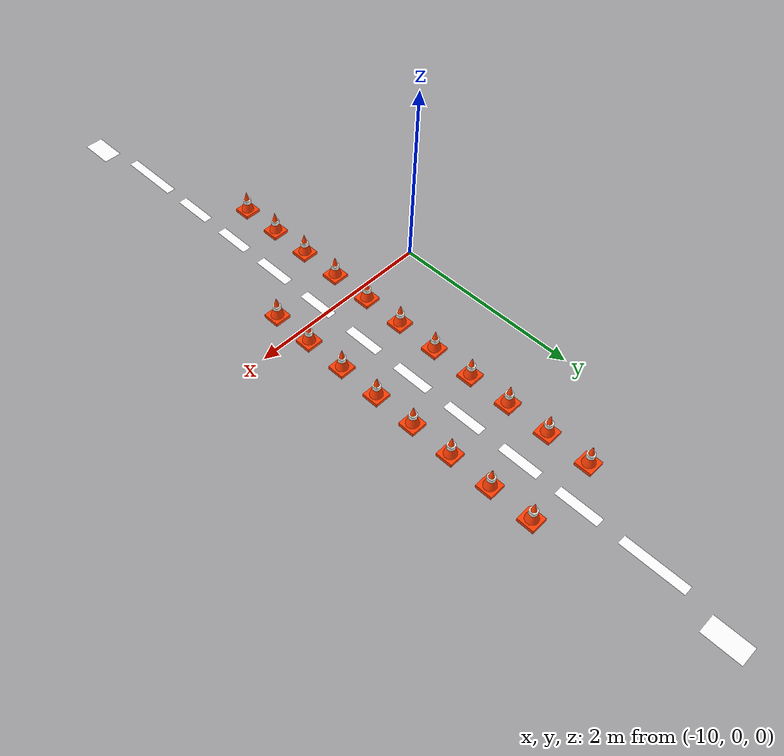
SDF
<sdf version="1.7">
 <world name="kookmin_xycar_track">
  <model name="yellow_centerline_dash_025">
   <static>true</static>
   <pose>-8.6900 4.5500 0.0192 0 0 0</pose>
   <link name="yellow_centerline_dash_025_surface">
    <visual name="visual">
     <cast_shadows>false</cast_shadows>
     <geometry><plane><normal>0 0 1</normal><size>0.2000 0.3800</size></plane></geometry>
     <material>
      <ambient>1 1 1 1</ambient>
      <diffuse>1 1 1 1</diffuse>
      <emissive>1.0000 0.7686 0.0471 1</emissive>
      <pbr>
       <metal>
        <albedo_map>file://media/materials/textures/kookmin_yellow_centerline_cad_v4_dash_025.png</albedo_map>
        <roughness>1</roughness>
        <metalness>0</metalness>
       </metal>
      </pbr>
     </material>
    </visual>
   </link>
  </model>
  <model name="yellow_centerline_dash_027">
   <static>true</static>
   <pose>-8.8200 3.8000 0.0193 0 0 0</pose>
   <link name="yellow_centerline_dash_027_surface">
    <visual name="visual">
     <cast_shadows>false</cast_shadows>
     <geometry><plane><normal>0 0 1</normal><size>0.1000 0.6400</size></plane></geometry>
     <material>
      <ambient>1 1 1 1</ambient>
      <diffuse>1 1 1 1</diffuse>
      <emissive>1.0000 0.7686 0.0471 1</emissive>
      <pbr>
       <metal>
        <albedo_map>file://media/materials/textures/kookmin_yellow_centerline_cad_v4_dash_027.png</albedo_map>
        <roughness>1</roughness>
        <metalness>0</metalness>
       </metal>
      </pbr>
     </material>
    </visual>
   </link>
  </model>
  <model name="yellow_centerline_dash_028">
   <static>true</static>
   <pose>-8.8200 3.0500 0.0193 0 0 0</pose>
   <link name="yellow_centerline_dash_028_surface">
    <visual name="visual">
     <cast_shadows>false</cast_shadows>
     <geometry><plane><normal>0 0 1</normal><size>0.1000 0.4400</size></plane></geometry>
     <material>
      <ambient>1 1 1 1</ambient>
      <diffuse>1 1 1 1</diffuse>
      <emissive>1.0000 0.7686 0.0471 1</emissive>
      <pbr>
       <metal>
        <albedo_map>file://media/materials/textures/kookmin_yellow_centerline_cad_v4_dash_028.png</albedo_map>
        <roughness>1</roughness>
        <metalness>0</metalness>
       </metal>
      </pbr>
     </material>
    </visual>
   </link>
  </model>
  <model name="yellow_centerline_dash_030">
   <static>true</static>
   <pose>-8.8200 2.4200 0.0194 0 0 0</pose>
   <link name="yellow_centerline_dash_030_surface">
    <visual name="visual">
     <cast_shadows>false</cast_shadows>
     <geometry><plane><normal>0 0 1</normal><size>0.1000 0.4200</size></plane></geometry>
     <material>
      <ambient>1 1 1 1</ambient>
      <diffuse>1 1 1 1</diffuse>
      <emissive>1.0000 0.7686 0.0471 1</emissive>
      <pbr>
       <metal>
        <albedo_map>file://media/materials/textures/kookmin_yellow_centerline_cad_v4_dash_030.png</albedo_map>
        <roughness>1</roughness>
        <metalness>0</metalness>
       </metal>
      </pbr>
     </material>
    </visual>
   </link>
  </model>
  <model name="yellow_centerline_dash_032">
   <static>true</static>
   <pose>-8.8200 1.7800 0.0195 0 0 0</pose>
   <link name="yellow_centerline_dash_032_surface">
    <visual name="visual">
     <cast_shadows>false</cast_shadows>
     <geometry><plane><normal>0 0 1</normal><size>0.1000 0.4200</size></plane></geometry>
     <material>
      <ambient>1 1 1 1</ambient>
      <diffuse>1 1 1 1</diffuse>
      <emissive>1.0000 0.7686 0.0471 1</emissive>
      <pbr>
       <metal>
        <albedo_map>file://media/materials/textures/kookmin_yellow_centerline_cad_v4_dash_032.png</albedo_map>
        <roughness>1</roughness>
        <metalness>0</metalness>
       </metal>
      </pbr>
     </material>
    </visual>
   </link>
  </model>
  <model name="yellow_centerline_dash_033">
   <static>true</static>
   <pose>-8.8200 1.1450 0.0196 0 0 0</pose>
   <link name="yellow_centerline_dash_033_surface">
    <visual name="visual">
     <cast_shadows>false</cast_shadows>
     <geometry><plane><normal>0 0 1</normal><size>0.1000 0.4100</size></plane></geometry>
     <material>
      <ambient>1 1 1 1</ambient>
      <diffuse>1 1 1 1</diffuse>
      <emissive>1.0000 0.7686 0.0471 1</emissive>
      <pbr>
       <metal>
        <albedo_map>file://media/materials/textures/kookmin_yellow_centerline_cad_v4_dash_033.png</albedo_map>
        <roughness>1</roughness>
        <metalness>0</metalness>
       </metal>
      </pbr>
     </material>
    </visual>
   </link>
  </model>
  <model name="yellow_centerline_dash_035">
   <static>true</static>
   <pose>-8.8200 0.5100 0.0197 0 0 0</pose>
   <link name="yellow_centerline_dash_035_surface">
    <visual name="visual">
     <cast_shadows>false</cast_shadows>
     <geometry><plane><normal>0 0 1</normal><size>0.1000 0.4000</size></plane></geometry>
     <material>
      <ambient>1 1 1 1</ambient>
      <diffuse>1 1 1 1</diffuse>
      <emissive>1.0000 0.7686 0.0471 1</emissive>
      <pbr>
       <metal>
        <albedo_map>file://media/materials/textures/kookmin_yellow_centerline_cad_v4_dash_035.png</albedo_map>
        <roughness>1</roughness>
        <metalness>0</metalness>
       </metal>
      </pbr>
     </material>
    </visual>
   </link>
  </model>
  <model name="yellow_centerline_dash_037">
   <static>true</static>
   <pose>-8.8200 -0.1300 0.0198 0 0 0</pose>
   <link name="yellow_centerline_dash_037_surface">
    <visual name="visual">
     <cast_shadows>false</cast_shadows>
     <geometry><plane><normal>0 0 1</normal><size>0.1000 0.4000</size></plane></geometry>
     <material>
      <ambient>1 1 1 1</ambient>
      <diffuse>1 1 1 1</diffuse>
      <emissive>1.0000 0.7686 0.0471 1</emissive>
      <pbr>
       <metal>
        <albedo_map>file://media/materials/textures/kookmin_yellow_centerline_cad_v4_dash_037.png</albedo_map>
        <roughness>1</roughness>
        <metalness>0</metalness>
       </metal>
      </pbr>
     </material>
    </visual>
   </link>
  </model>
  <model name="yellow_centerline_dash_038">
   <static>true</static>
   <pose>-8.8200 -0.7750 0.0198 0 0 0</pose>
   <link name="yellow_centerline_dash_038_surface">
    <visual name="visual">
     <cast_shadows>false</cast_shadows>
     <geometry><plane><normal>0 0 1</normal><size>0.1000 0.4300</size></plane></geometry>
     <material>
      <ambient>1 1 1 1</ambient>
      <diffuse>1 1 1 1</diffuse>
      <emissive>1.0000 0.7686 0.0471 1</emissive>
      <pbr>
       <metal>
        <albedo_map>file://media/materials/textures/kookmin_yellow_centerline_cad_v4_dash_038.png</albedo_map>
        <roughness>1</roughness>
        <metalness>0</metalness>
       </metal>
      </pbr>
     </material>
    </visual>
   </link>
  </model>
  <model name="yellow_centerline_dash_040">
   <static>true</static>
   <pose>-8.8200 -1.4050 0.0199 0 0 0</pose>
   <link name="yellow_centerline_dash_040_surface">
    <visual name="visual">
     <cast_shadows>false</cast_shadows>
     <geometry><plane><normal>0 0 1</normal><size>0.1000 0.4100</size></plane></geometry>
     <material>
      <ambient>1 1 1 1</ambient>
      <diffuse>1 1 1 1</diffuse>
      <emissive>1.0000 0.7686 0.0471 1</emissive>
      <pbr>
       <metal>
        <albedo_map>file://media/materials/textures/kookmin_yellow_centerline_cad_v4_dash_040.png</albedo_map>
        <roughness>1</roughness>
        <metalness>0</metalness>
       </metal>
      </pbr>
     </material>
    </visual>
   </link>
  </model>
  <model name="yellow_centerline_dash_042">
   <static>true</static>
   <pose>-8.8200 -2.0500 0.0200 0 0 0</pose>
   <link name="yellow_centerline_dash_042_surface">
    <visual name="visual">
     <cast_shadows>false</cast_shadows>
     <geometry><plane><normal>0 0 1</normal><size>0.1000 0.4400</size></plane></geometry>
     <material>
      <ambient>1 1 1 1</ambient>
      <diffuse>1 1 1 1</diffuse>
      <emissive>1.0000 0.7686 0.0471 1</emissive>
      <pbr>
       <metal>
        <albedo_map>file://media/materials/textures/kookmin_yellow_centerline_cad_v4_dash_042.png</albedo_map>
        <roughness>1</roughness>
        <metalness>0</metalness>
       </metal>
      </pbr>
     </material>
    </visual>
   </link>
  </model>
  <model name="yellow_centerline_dash_043">
   <static>true</static>
   <pose>-8.8200 -2.8100 0.0201 0 0 0</pose>
   <link name="yellow_centerline_dash_043_surface">
    <visual name="visual">
     <cast_shadows>false</cast_shadows>
     <geometry><plane><normal>0 0 1</normal><size>0.1000 0.6800</size></plane></geometry>
     <material>
      <ambient>1 1 1 1</ambient>
      <diffuse>1 1 1 1</diffuse>
      <emissive>1.0000 0.7686 0.0471 1</emissive>
      <pbr>
       <metal>
        <albedo_map>file://media/materials/textures/kookmin_yellow_centerline_cad_v4_dash_043.png</albedo_map>
        <roughness>1</roughness>
        <metalness>0</metalness>
       </metal>
      </pbr>
     </material>
    </visual>
   </link>
  </model>
  <model name="yellow_centerline_dash_045">
   <static>true</static>
   <pose>-8.7000 -3.5650 0.0202 0 0 0</pose>
   <link name="yellow_centerline_dash_045_surface">
    <visual name="visual">
     <cast_shadows>false</cast_shadows>
     <geometry><plane><normal>0 0 1</normal><size>0.2000 0.3700</size></plane></geometry>
     <material>
      <ambient>1 1 1 1</ambient>
      <diffuse>1 1 1 1</diffuse>
      <emissive>1.0000 0.7686 0.0471 1</emissive>
      <pbr>
       <metal>
        <albedo_map>file://media/materials/textures/kookmin_yellow_centerline_cad_v4_dash_045.png</albedo_map>
        <roughness>1</roughness>
        <metalness>0</metalness>
       </metal>
      </pbr>
     </material>
    </visual>
   </link>
  </model>
  <model name="mission_cone_east_01">
   <static>true</static>
   <pose>-8.4400 2.8500 0 0 0 0</pose>
   <link name="cone">
    <collision name="collision">
     <pose>0 0 0.1350 0 0 0</pose>
     <geometry><cylinder><radius>0.0615</radius><length>0.2700</length></cylinder></geometry>
    </collision>
    <visual name="base">
     <pose>0 0 0.018 0 0 0</pose>
     <geometry><box><size>0.1762 0.1762 0.036</size></box></geometry>
     <material>
      <ambient>1.0000 0.2400 0.0150 1.0000</ambient>
      <diffuse>1.0000 0.2400 0.0150 1.0000</diffuse>
      <emissive>0.1800 0.0250 0.0000 1.0000</emissive>
      <pbr><metal><roughness>0.72</roughness><metalness>0.0</metalness></metal></pbr>
     </material>
    </visual>
    <visual name="body">
     <pose>0 0 0.1350 0 0 0</pose>
     <geometry><cone><radius>0.0750</radius><length>0.2700</length></cone></geometry>
     <material>
      <ambient>1.0000 0.2400 0.0150 1.0000</ambient>
      <diffuse>1.0000 0.2400 0.0150 1.0000</diffuse>
      <emissive>0.1800 0.0250 0.0000 1.0000</emissive>
      <pbr><metal><roughness>0.72</roughness><metalness>0.0</metalness></metal></pbr>
     </material>
    </visual>
    <visual name="reflective_band">
     <pose>0 0 0.1485 0 0 0</pose>
     <geometry><cylinder><radius>0.0405</radius><length>0.0432</length></cylinder></geometry>
     <material>
      <ambient>0.9500 0.9500 0.9000 1.0000</ambient>
      <diffuse>0.9500 0.9500 0.9000 1.0000</diffuse>
      <emissive>0.1200 0.1200 0.1000 1.0000</emissive>
      <pbr><metal><roughness>0.72</roughness><metalness>0.0</metalness></metal></pbr>
     </material>
    </visual>
   </link>
  </model>
  <model name="mission_cone_west_01">
   <static>true</static>
   <pose>-9.2200 2.8500 0 0 0 0</pose>
   <link name="cone">
    <collision name="collision">
     <pose>0 0 0.1350 0 0 0</pose>
     <geometry><cylinder><radius>0.0615</radius><length>0.2700</length></cylinder></geometry>
    </collision>
    <visual name="base">
     <pose>0 0 0.018 0 0 0</pose>
     <geometry><box><size>0.1762 0.1762 0.036</size></box></geometry>
     <material>
      <ambient>1.0000 0.2400 0.0150 1.0000</ambient>
      <diffuse>1.0000 0.2400 0.0150 1.0000</diffuse>
      <emissive>0.1800 0.0250 0.0000 1.0000</emissive>
      <pbr><metal><roughness>0.72</roughness><metalness>0.0</metalness></metal></pbr>
     </material>
    </visual>
    <visual name="body">
     <pose>0 0 0.1350 0 0 0</pose>
     <geometry><cone><radius>0.0750</radius><length>0.2700</length></cone></geometry>
     <material>
      <ambient>1.0000 0.2400 0.0150 1.0000</ambient>
      <diffuse>1.0000 0.2400 0.0150 1.0000</diffuse>
      <emissive>0.1800 0.0250 0.0000 1.0000</emissive>
      <pbr><metal><roughness>0.72</roughness><metalness>0.0</metalness></metal></pbr>
     </material>
    </visual>
    <visual name="reflective_band">
     <pose>0 0 0.1485 0 0 0</pose>
     <geometry><cylinder><radius>0.0405</radius><length>0.0432</length></cylinder></geometry>
     <material>
      <ambient>0.9500 0.9500 0.9000 1.0000</ambient>
      <diffuse>0.9500 0.9500 0.9000 1.0000</diffuse>
      <emissive>0.1200 0.1200 0.1000 1.0000</emissive>
      <pbr><metal><roughness>0.72</roughness><metalness>0.0</metalness></metal></pbr>
     </material>
    </visual>
   </link>
  </model>
  <model name="mission_cone_east_02">
   <static>true</static>
   <pose>-8.4400 2.4000 0 0 0 0</pose>
   <link name="cone">
    <collision name="collision">
     <pose>0 0 0.1350 0 0 0</pose>
     <geometry><cylinder><radius>0.0615</radius><length>0.2700</length></cylinder></geometry>
    </collision>
    <visual name="base">
     <pose>0 0 0.018 0 0 0</pose>
     <geometry><box><size>0.1762 0.1762 0.036</size></box></geometry>
     <material>
      <ambient>1.0000 0.2400 0.0150 1.0000</ambient>
      <diffuse>1.0000 0.2400 0.0150 1.0000</diffuse>
      <emissive>0.1800 0.0250 0.0000 1.0000</emissive>
      <pbr><metal><roughness>0.72</roughness><metalness>0.0</metalness></metal></pbr>
     </material>
    </visual>
    <visual name="body">
     <pose>0 0 0.1350 0 0 0</pose>
     <geometry><cone><radius>0.0750</radius><length>0.2700</length></cone></geometry>
     <material>
      <ambient>1.0000 0.2400 0.0150 1.0000</ambient>
      <diffuse>1.0000 0.2400 0.0150 1.0000</diffuse>
      <emissive>0.1800 0.0250 0.0000 1.0000</emissive>
      <pbr><metal><roughness>0.72</roughness><metalness>0.0</metalness></metal></pbr>
     </material>
    </visual>
    <visual name="reflective_band">
     <pose>0 0 0.1485 0 0 0</pose>
     <geometry><cylinder><radius>0.0405</radius><length>0.0432</length></cylinder></geometry>
     <material>
      <ambient>0.9500 0.9500 0.9000 1.0000</ambient>
      <diffuse>0.9500 0.9500 0.9000 1.0000</diffuse>
      <emissive>0.1200 0.1200 0.1000 1.0000</emissive>
      <pbr><metal><roughness>0.72</roughness><metalness>0.0</metalness></metal></pbr>
     </material>
    </visual>
   </link>
  </model>
  <model name="mission_cone_west_02">
   <static>true</static>
   <pose>-9.2200 2.4000 0 0 0 0</pose>
   <link name="cone">
    <collision name="collision">
     <pose>0 0 0.1350 0 0 0</pose>
     <geometry><cylinder><radius>0.0615</radius><length>0.2700</length></cylinder></geometry>
    </collision>
    <visual name="base">
     <pose>0 0 0.018 0 0 0</pose>
     <geometry><box><size>0.1762 0.1762 0.036</size></box></geometry>
     <material>
      <ambient>1.0000 0.2400 0.0150 1.0000</ambient>
      <diffuse>1.0000 0.2400 0.0150 1.0000</diffuse>
      <emissive>0.1800 0.0250 0.0000 1.0000</emissive>
      <pbr><metal><roughness>0.72</roughness><metalness>0.0</metalness></metal></pbr>
     </material>
    </visual>
    <visual name="body">
     <pose>0 0 0.1350 0 0 0</pose>
     <geometry><cone><radius>0.0750</radius><length>0.2700</length></cone></geometry>
     <material>
      <ambient>1.0000 0.2400 0.0150 1.0000</ambient>
      <diffuse>1.0000 0.2400 0.0150 1.0000</diffuse>
      <emissive>0.1800 0.0250 0.0000 1.0000</emissive>
      <pbr><metal><roughness>0.72</roughness><metalness>0.0</metalness></metal></pbr>
     </material>
    </visual>
    <visual name="reflective_band">
     <pose>0 0 0.1485 0 0 0</pose>
     <geometry><cylinder><radius>0.0405</radius><length>0.0432</length></cylinder></geometry>
     <material>
      <ambient>0.9500 0.9500 0.9000 1.0000</ambient>
      <diffuse>0.9500 0.9500 0.9000 1.0000</diffuse>
      <emissive>0.1200 0.1200 0.1000 1.0000</emissive>
      <pbr><metal><roughness>0.72</roughness><metalness>0.0</metalness></metal></pbr>
     </material>
    </visual>
   </link>
  </model>
  <model name="mission_cone_east_03">
   <static>true</static>
   <pose>-8.4400 1.9500 0 0 0 0</pose>
   <link name="cone">
    <collision name="collision">
     <pose>0 0 0.1350 0 0 0</pose>
     <geometry><cylinder><radius>0.0615</radius><length>0.2700</length></cylinder></geometry>
    </collision>
    <visual name="base">
     <pose>0 0 0.018 0 0 0</pose>
     <geometry><box><size>0.1762 0.1762 0.036</size></box></geometry>
     <material>
      <ambient>1.0000 0.2400 0.0150 1.0000</ambient>
      <diffuse>1.0000 0.2400 0.0150 1.0000</diffuse>
      <emissive>0.1800 0.0250 0.0000 1.0000</emissive>
      <pbr><metal><roughness>0.72</roughness><metalness>0.0</metalness></metal></pbr>
     </material>
    </visual>
    <visual name="body">
     <pose>0 0 0.1350 0 0 0</pose>
     <geometry><cone><radius>0.0750</radius><length>0.2700</length></cone></geometry>
     <material>
      <ambient>1.0000 0.2400 0.0150 1.0000</ambient>
      <diffuse>1.0000 0.2400 0.0150 1.0000</diffuse>
      <emissive>0.1800 0.0250 0.0000 1.0000</emissive>
      <pbr><metal><roughness>0.72</roughness><metalness>0.0</metalness></metal></pbr>
     </material>
    </visual>
    <visual name="reflective_band">
     <pose>0 0 0.1485 0 0 0</pose>
     <geometry><cylinder><radius>0.0405</radius><length>0.0432</length></cylinder></geometry>
     <material>
      <ambient>0.9500 0.9500 0.9000 1.0000</ambient>
      <diffuse>0.9500 0.9500 0.9000 1.0000</diffuse>
      <emissive>0.1200 0.1200 0.1000 1.0000</emissive>
      <pbr><metal><roughness>0.72</roughness><metalness>0.0</metalness></metal></pbr>
     </material>
    </visual>
   </link>
  </model>
  <model name="mission_cone_west_03">
   <static>true</static>
   <pose>-9.2200 1.9500 0 0 0 0</pose>
   <link name="cone">
    <collision name="collision">
     <pose>0 0 0.1350 0 0 0</pose>
     <geometry><cylinder><radius>0.0615</radius><length>0.2700</length></cylinder></geometry>
    </collision>
    <visual name="base">
     <pose>0 0 0.018 0 0 0</pose>
     <geometry><box><size>0.1762 0.1762 0.036</size></box></geometry>
     <material>
      <ambient>1.0000 0.2400 0.0150 1.0000</ambient>
      <diffuse>1.0000 0.2400 0.0150 1.0000</diffuse>
      <emissive>0.1800 0.0250 0.0000 1.0000</emissive>
      <pbr><metal><roughness>0.72</roughness><metalness>0.0</metalness></metal></pbr>
     </material>
    </visual>
    <visual name="body">
     <pose>0 0 0.1350 0 0 0</pose>
     <geometry><cone><radius>0.0750</radius><length>0.2700</length></cone></geometry>
     <material>
      <ambient>1.0000 0.2400 0.0150 1.0000</ambient>
      <diffuse>1.0000 0.2400 0.0150 1.0000</diffuse>
      <emissive>0.1800 0.0250 0.0000 1.0000</emissive>
      <pbr><metal><roughness>0.72</roughness><metalness>0.0</metalness></metal></pbr>
     </material>
    </visual>
    <visual name="reflective_band">
     <pose>0 0 0.1485 0 0 0</pose>
     <geometry><cylinder><radius>0.0405</radius><length>0.0432</length></cylinder></geometry>
     <material>
      <ambient>0.9500 0.9500 0.9000 1.0000</ambient>
      <diffuse>0.9500 0.9500 0.9000 1.0000</diffuse>
      <emissive>0.1200 0.1200 0.1000 1.0000</emissive>
      <pbr><metal><roughness>0.72</roughness><metalness>0.0</metalness></metal></pbr>
     </material>
    </visual>
   </link>
  </model>
  <model name="mission_cone_east_04">
   <static>true</static>
   <pose>-8.4400 1.5000 0 0 0 0</pose>
   <link name="cone">
    <collision name="collision">
     <pose>0 0 0.1350 0 0 0</pose>
     <geometry><cylinder><radius>0.0615</radius><length>0.2700</length></cylinder></geometry>
    </collision>
    <visual name="base">
     <pose>0 0 0.018 0 0 0</pose>
     <geometry><box><size>0.1762 0.1762 0.036</size></box></geometry>
     <material>
      <ambient>1.0000 0.2400 0.0150 1.0000</ambient>
      <diffuse>1.0000 0.2400 0.0150 1.0000</diffuse>
      <emissive>0.1800 0.0250 0.0000 1.0000</emissive>
      <pbr><metal><roughness>0.72</roughness><metalness>0.0</metalness></metal></pbr>
     </material>
    </visual>
    <visual name="body">
     <pose>0 0 0.1350 0 0 0</pose>
     <geometry><cone><radius>0.0750</radius><length>0.2700</length></cone></geometry>
     <material>
      <ambient>1.0000 0.2400 0.0150 1.0000</ambient>
      <diffuse>1.0000 0.2400 0.0150 1.0000</diffuse>
      <emissive>0.1800 0.0250 0.0000 1.0000</emissive>
      <pbr><metal><roughness>0.72</roughness><metalness>0.0</metalness></metal></pbr>
     </material>
    </visual>
    <visual name="reflective_band">
     <pose>0 0 0.1485 0 0 0</pose>
     <geometry><cylinder><radius>0.0405</radius><length>0.0432</length></cylinder></geometry>
     <material>
      <ambient>0.9500 0.9500 0.9000 1.0000</ambient>
      <diffuse>0.9500 0.9500 0.9000 1.0000</diffuse>
      <emissive>0.1200 0.1200 0.1000 1.0000</emissive>
      <pbr><metal><roughness>0.72</roughness><metalness>0.0</metalness></metal></pbr>
     </material>
    </visual>
   </link>
  </model>
  <model name="mission_cone_west_04">
   <static>true</static>
   <pose>-9.2200 1.5000 0 0 0 0</pose>
   <link name="cone">
    <collision name="collision">
     <pose>0 0 0.1350 0 0 0</pose>
     <geometry><cylinder><radius>0.0615</radius><length>0.2700</length></cylinder></geometry>
    </collision>
    <visual name="base">
     <pose>0 0 0.018 0 0 0</pose>
     <geometry><box><size>0.1762 0.1762 0.036</size></box></geometry>
     <material>
      <ambient>1.0000 0.2400 0.0150 1.0000</ambient>
      <diffuse>1.0000 0.2400 0.0150 1.0000</diffuse>
      <emissive>0.1800 0.0250 0.0000 1.0000</emissive>
      <pbr><metal><roughness>0.72</roughness><metalness>0.0</metalness></metal></pbr>
     </material>
    </visual>
    <visual name="body">
     <pose>0 0 0.1350 0 0 0</pose>
     <geometry><cone><radius>0.0750</radius><length>0.2700</length></cone></geometry>
     <material>
      <ambient>1.0000 0.2400 0.0150 1.0000</ambient>
      <diffuse>1.0000 0.2400 0.0150 1.0000</diffuse>
      <emissive>0.1800 0.0250 0.0000 1.0000</emissive>
      <pbr><metal><roughness>0.72</roughness><metalness>0.0</metalness></metal></pbr>
     </material>
    </visual>
    <visual name="reflective_band">
     <pose>0 0 0.1485 0 0 0</pose>
     <geometry><cylinder><radius>0.0405</radius><length>0.0432</length></cylinder></geometry>
     <material>
      <ambient>0.9500 0.9500 0.9000 1.0000</ambient>
      <diffuse>0.9500 0.9500 0.9000 1.0000</diffuse>
      <emissive>0.1200 0.1200 0.1000 1.0000</emissive>
      <pbr><metal><roughness>0.72</roughness><metalness>0.0</metalness></metal></pbr>
     </material>
    </visual>
   </link>
  </model>
  <model name="mission_cone_east_05">
   <static>true</static>
   <pose>-8.4400 1.0500 0 0 0 0</pose>
   <link name="cone">
    <collision name="collision">
     <pose>0 0 0.1350 0 0 0</pose>
     <geometry><cylinder><radius>0.0615</radius><length>0.2700</length></cylinder></geometry>
    </collision>
    <visual name="base">
     <pose>0 0 0.018 0 0 0</pose>
     <geometry><box><size>0.1762 0.1762 0.036</size></box></geometry>
     <material>
      <ambient>1.0000 0.2400 0.0150 1.0000</ambient>
      <diffuse>1.0000 0.2400 0.0150 1.0000</diffuse>
      <emissive>0.1800 0.0250 0.0000 1.0000</emissive>
      <pbr><metal><roughness>0.72</roughness><metalness>0.0</metalness></metal></pbr>
     </material>
    </visual>
    <visual name="body">
     <pose>0 0 0.1350 0 0 0</pose>
     <geometry><cone><radius>0.0750</radius><length>0.2700</length></cone></geometry>
     <material>
      <ambient>1.0000 0.2400 0.0150 1.0000</ambient>
      <diffuse>1.0000 0.2400 0.0150 1.0000</diffuse>
      <emissive>0.1800 0.0250 0.0000 1.0000</emissive>
      <pbr><metal><roughness>0.72</roughness><metalness>0.0</metalness></metal></pbr>
     </material>
    </visual>
    <visual name="reflective_band">
     <pose>0 0 0.1485 0 0 0</pose>
     <geometry><cylinder><radius>0.0405</radius><length>0.0432</length></cylinder></geometry>
     <material>
      <ambient>0.9500 0.9500 0.9000 1.0000</ambient>
      <diffuse>0.9500 0.9500 0.9000 1.0000</diffuse>
      <emissive>0.1200 0.1200 0.1000 1.0000</emissive>
      <pbr><metal><roughness>0.72</roughness><metalness>0.0</metalness></metal></pbr>
     </material>
    </visual>
   </link>
  </model>
  <model name="mission_cone_west_05">
   <static>true</static>
   <pose>-9.2200 1.0500 0 0 0 0</pose>
   <link name="cone">
    <collision name="collision">
     <pose>0 0 0.1350 0 0 0</pose>
     <geometry><cylinder><radius>0.0615</radius><length>0.2700</length></cylinder></geometry>
    </collision>
    <visual name="base">
     <pose>0 0 0.018 0 0 0</pose>
     <geometry><box><size>0.1762 0.1762 0.036</size></box></geometry>
     <material>
      <ambient>1.0000 0.2400 0.0150 1.0000</ambient>
      <diffuse>1.0000 0.2400 0.0150 1.0000</diffuse>
      <emissive>0.1800 0.0250 0.0000 1.0000</emissive>
      <pbr><metal><roughness>0.72</roughness><metalness>0.0</metalness></metal></pbr>
     </material>
    </visual>
    <visual name="body">
     <pose>0 0 0.1350 0 0 0</pose>
     <geometry><cone><radius>0.0750</radius><length>0.2700</length></cone></geometry>
     <material>
      <ambient>1.0000 0.2400 0.0150 1.0000</ambient>
      <diffuse>1.0000 0.2400 0.0150 1.0000</diffuse>
      <emissive>0.1800 0.0250 0.0000 1.0000</emissive>
      <pbr><metal><roughness>0.72</roughness><metalness>0.0</metalness></metal></pbr>
     </material>
    </visual>
    <visual name="reflective_band">
     <pose>0 0 0.1485 0 0 0</pose>
     <geometry><cylinder><radius>0.0405</radius><length>0.0432</length></cylinder></geometry>
     <material>
      <ambient>0.9500 0.9500 0.9000 1.0000</ambient>
      <diffuse>0.9500 0.9500 0.9000 1.0000</diffuse>
      <emissive>0.1200 0.1200 0.1000 1.0000</emissive>
      <pbr><metal><roughness>0.72</roughness><metalness>0.0</metalness></metal></pbr>
     </material>
    </visual>
   </link>
  </model>
  <model name="mission_cone_east_06">
   <static>true</static>
   <pose>-8.4400 0.6000 0 0 0 0</pose>
   <link name="cone">
    <collision name="collision">
     <pose>0 0 0.1350 0 0 0</pose>
     <geometry><cylinder><radius>0.0615</radius><length>0.2700</length></cylinder></geometry>
    </collision>
    <visual name="base">
     <pose>0 0 0.018 0 0 0</pose>
     <geometry><box><size>0.1762 0.1762 0.036</size></box></geometry>
     <material>
      <ambient>1.0000 0.2400 0.0150 1.0000</ambient>
      <diffuse>1.0000 0.2400 0.0150 1.0000</diffuse>
      <emissive>0.1800 0.0250 0.0000 1.0000</emissive>
      <pbr><metal><roughness>0.72</roughness><metalness>0.0</metalness></metal></pbr>
     </material>
    </visual>
    <visual name="body">
     <pose>0 0 0.1350 0 0 0</pose>
     <geometry><cone><radius>0.0750</radius><length>0.2700</length></cone></geometry>
     <material>
      <ambient>1.0000 0.2400 0.0150 1.0000</ambient>
      <diffuse>1.0000 0.2400 0.0150 1.0000</diffuse>
      <emissive>0.1800 0.0250 0.0000 1.0000</emissive>
      <pbr><metal><roughness>0.72</roughness><metalness>0.0</metalness></metal></pbr>
     </material>
    </visual>
    <visual name="reflective_band">
     <pose>0 0 0.1485 0 0 0</pose>
     <geometry><cylinder><radius>0.0405</radius><length>0.0432</length></cylinder></geometry>
     <material>
      <ambient>0.9500 0.9500 0.9000 1.0000</ambient>
      <diffuse>0.9500 0.9500 0.9000 1.0000</diffuse>
      <emissive>0.1200 0.1200 0.1000 1.0000</emissive>
      <pbr><metal><roughness>0.72</roughness><metalness>0.0</metalness></metal></pbr>
     </material>
    </visual>
   </link>
  </model>
  <model name="mission_cone_west_06">
   <static>true</static>
   <pose>-9.2200 0.6000 0 0 0 0</pose>
   <link name="cone">
    <collision name="collision">
     <pose>0 0 0.1350 0 0 0</pose>
     <geometry><cylinder><radius>0.0615</radius><length>0.2700</length></cylinder></geometry>
    </collision>
    <visual name="base">
     <pose>0 0 0.018 0 0 0</pose>
     <geometry><box><size>0.1762 0.1762 0.036</size></box></geometry>
     <material>
      <ambient>1.0000 0.2400 0.0150 1.0000</ambient>
      <diffuse>1.0000 0.2400 0.0150 1.0000</diffuse>
      <emissive>0.1800 0.0250 0.0000 1.0000</emissive>
      <pbr><metal><roughness>0.72</roughness><metalness>0.0</metalness></metal></pbr>
     </material>
    </visual>
    <visual name="body">
     <pose>0 0 0.1350 0 0 0</pose>
     <geometry><cone><radius>0.0750</radius><length>0.2700</length></cone></geometry>
     <material>
      <ambient>1.0000 0.2400 0.0150 1.0000</ambient>
      <diffuse>1.0000 0.2400 0.0150 1.0000</diffuse>
      <emissive>0.1800 0.0250 0.0000 1.0000</emissive>
      <pbr><metal><roughness>0.72</roughness><metalness>0.0</metalness></metal></pbr>
     </material>
    </visual>
    <visual name="reflective_band">
     <pose>0 0 0.1485 0 0 0</pose>
     <geometry><cylinder><radius>0.0405</radius><length>0.0432</length></cylinder></geometry>
     <material>
      <ambient>0.9500 0.9500 0.9000 1.0000</ambient>
      <diffuse>0.9500 0.9500 0.9000 1.0000</diffuse>
      <emissive>0.1200 0.1200 0.1000 1.0000</emissive>
      <pbr><metal><roughness>0.72</roughness><metalness>0.0</metalness></metal></pbr>
     </material>
    </visual>
   </link>
  </model>
  <model name="mission_cone_east_07">
   <static>true</static>
   <pose>-8.4400 0.1500 0 0 0 0</pose>
   <link name="cone">
    <collision name="collision">
     <pose>0 0 0.1350 0 0 0</pose>
     <geometry><cylinder><radius>0.0615</radius><length>0.2700</length></cylinder></geometry>
    </collision>
    <visual name="base">
     <pose>0 0 0.018 0 0 0</pose>
     <geometry><box><size>0.1762 0.1762 0.036</size></box></geometry>
     <material>
      <ambient>1.0000 0.2400 0.0150 1.0000</ambient>
      <diffuse>1.0000 0.2400 0.0150 1.0000</diffuse>
      <emissive>0.1800 0.0250 0.0000 1.0000</emissive>
      <pbr><metal><roughness>0.72</roughness><metalness>0.0</metalness></metal></pbr>
     </material>
    </visual>
    <visual name="body">
     <pose>0 0 0.1350 0 0 0</pose>
     <geometry><cone><radius>0.0750</radius><length>0.2700</length></cone></geometry>
     <material>
      <ambient>1.0000 0.2400 0.0150 1.0000</ambient>
      <diffuse>1.0000 0.2400 0.0150 1.0000</diffuse>
      <emissive>0.1800 0.0250 0.0000 1.0000</emissive>
      <pbr><metal><roughness>0.72</roughness><metalness>0.0</metalness></metal></pbr>
     </material>
    </visual>
    <visual name="reflective_band">
     <pose>0 0 0.1485 0 0 0</pose>
     <geometry><cylinder><radius>0.0405</radius><length>0.0432</length></cylinder></geometry>
     <material>
      <ambient>0.9500 0.9500 0.9000 1.0000</ambient>
      <diffuse>0.9500 0.9500 0.9000 1.0000</diffuse>
      <emissive>0.1200 0.1200 0.1000 1.0000</emissive>
      <pbr><metal><roughness>0.72</roughness><metalness>0.0</metalness></metal></pbr>
     </material>
    </visual>
   </link>
  </model>
  <model name="mission_cone_west_07">
   <static>true</static>
   <pose>-9.2200 0.1500 0 0 0 0</pose>
   <link name="cone">
    <collision name="collision">
     <pose>0 0 0.1350 0 0 0</pose>
     <geometry><cylinder><radius>0.0615</radius><length>0.2700</length></cylinder></geometry>
    </collision>
    <visual name="base">
     <pose>0 0 0.018 0 0 0</pose>
     <geometry><box><size>0.1762 0.1762 0.036</size></box></geometry>
     <material>
      <ambient>1.0000 0.2400 0.0150 1.0000</ambient>
      <diffuse>1.0000 0.2400 0.0150 1.0000</diffuse>
      <emissive>0.1800 0.0250 0.0000 1.0000</emissive>
      <pbr><metal><roughness>0.72</roughness><metalness>0.0</metalness></metal></pbr>
     </material>
    </visual>
    <visual name="body">
     <pose>0 0 0.1350 0 0 0</pose>
     <geometry><cone><radius>0.0750</radius><length>0.2700</length></cone></geometry>
     <material>
      <ambient>1.0000 0.2400 0.0150 1.0000</ambient>
      <diffuse>1.0000 0.2400 0.0150 1.0000</diffuse>
      <emissive>0.1800 0.0250 0.0000 1.0000</emissive>
      <pbr><metal><roughness>0.72</roughness><metalness>0.0</metalness></metal></pbr>
     </material>
    </visual>
    <visual name="reflective_band">
     <pose>0 0 0.1485 0 0 0</pose>
     <geometry><cylinder><radius>0.0405</radius><length>0.0432</length></cylinder></geometry>
     <material>
      <ambient>0.9500 0.9500 0.9000 1.0000</ambient>
      <diffuse>0.9500 0.9500 0.9000 1.0000</diffuse>
      <emissive>0.1200 0.1200 0.1000 1.0000</emissive>
      <pbr><metal><roughness>0.72</roughness><metalness>0.0</metalness></metal></pbr>
     </material>
    </visual>
   </link>
  </model>
  <model name="mission_cone_east_08">
   <static>true</static>
   <pose>-8.4400 -0.3000 0 0 0 0</pose>
   <link name="cone">
    <collision name="collision">
     <pose>0 0 0.1350 0 0 0</pose>
     <geometry><cylinder><radius>0.0615</radius><length>0.2700</length></cylinder></geometry>
    </collision>
    <visual name="base">
     <pose>0 0 0.018 0 0 0</pose>
     <geometry><box><size>0.1762 0.1762 0.036</size></box></geometry>
     <material>
      <ambient>1.0000 0.2400 0.0150 1.0000</ambient>
      <diffuse>1.0000 0.2400 0.0150 1.0000</diffuse>
      <emissive>0.1800 0.0250 0.0000 1.0000</emissive>
      <pbr><metal><roughness>0.72</roughness><metalness>0.0</metalness></metal></pbr>
     </material>
    </visual>
    <visual name="body">
     <pose>0 0 0.1350 0 0 0</pose>
     <geometry><cone><radius>0.0750</radius><length>0.2700</length></cone></geometry>
     <material>
      <ambient>1.0000 0.2400 0.0150 1.0000</ambient>
      <diffuse>1.0000 0.2400 0.0150 1.0000</diffuse>
      <emissive>0.1800 0.0250 0.0000 1.0000</emissive>
      <pbr><metal><roughness>0.72</roughness><metalness>0.0</metalness></metal></pbr>
     </material>
    </visual>
    <visual name="reflective_band">
     <pose>0 0 0.1485 0 0 0</pose>
     <geometry><cylinder><radius>0.0405</radius><length>0.0432</length></cylinder></geometry>
     <material>
      <ambient>0.9500 0.9500 0.9000 1.0000</ambient>
      <diffuse>0.9500 0.9500 0.9000 1.0000</diffuse>
      <emissive>0.1200 0.1200 0.1000 1.0000</emissive>
      <pbr><metal><roughness>0.72</roughness><metalness>0.0</metalness></metal></pbr>
     </material>
    </visual>
   </link>
  </model>
  <model name="mission_cone_west_08">
   <static>true</static>
   <pose>-9.2200 -0.3000 0 0 0 0</pose>
   <link name="cone">
    <collision name="collision">
     <pose>0 0 0.1350 0 0 0</pose>
     <geometry><cylinder><radius>0.0615</radius><length>0.2700</length></cylinder></geometry>
    </collision>
    <visual name="base">
     <pose>0 0 0.018 0 0 0</pose>
     <geometry><box><size>0.1762 0.1762 0.036</size></box></geometry>
     <material>
      <ambient>1.0000 0.2400 0.0150 1.0000</ambient>
      <diffuse>1.0000 0.2400 0.0150 1.0000</diffuse>
      <emissive>0.1800 0.0250 0.0000 1.0000</emissive>
      <pbr><metal><roughness>0.72</roughness><metalness>0.0</metalness></metal></pbr>
     </material>
    </visual>
    <visual name="body">
     <pose>0 0 0.1350 0 0 0</pose>
     <geometry><cone><radius>0.0750</radius><length>0.2700</length></cone></geometry>
     <material>
      <ambient>1.0000 0.2400 0.0150 1.0000</ambient>
      <diffuse>1.0000 0.2400 0.0150 1.0000</diffuse>
      <emissive>0.1800 0.0250 0.0000 1.0000</emissive>
      <pbr><metal><roughness>0.72</roughness><metalness>0.0</metalness></metal></pbr>
     </material>
    </visual>
    <visual name="reflective_band">
     <pose>0 0 0.1485 0 0 0</pose>
     <geometry><cylinder><radius>0.0405</radius><length>0.0432</length></cylinder></geometry>
     <material>
      <ambient>0.9500 0.9500 0.9000 1.0000</ambient>
      <diffuse>0.9500 0.9500 0.9000 1.0000</diffuse>
      <emissive>0.1200 0.1200 0.1000 1.0000</emissive>
      <pbr><metal><roughness>0.72</roughness><metalness>0.0</metalness></metal></pbr>
     </material>
    </visual>
   </link>
  </model>
  <model name="mission_cone_west_09">
   <static>true</static>
   <pose>-9.2200 -0.7500 0 0 0 0</pose>
   <link name="cone">
    <collision name="collision">
     <pose>0 0 0.1350 0 0 0</pose>
     <geometry><cylinder><radius>0.0615</radius><length>0.2700</length></cylinder></geometry>
    </collision>
    <visual name="base">
     <pose>0 0 0.018 0 0 0</pose>
     <geometry><box><size>0.1762 0.1762 0.036</size></box></geometry>
     <material>
      <ambient>1.0000 0.2400 0.0150 1.0000</ambient>
      <diffuse>1.0000 0.2400 0.0150 1.0000</diffuse>
      <emissive>0.1800 0.0250 0.0000 1.0000</emissive>
      <pbr><metal><roughness>0.72</roughness><metalness>0.0</metalness></metal></pbr>
     </material>
    </visual>
    <visual name="body">
     <pose>0 0 0.1350 0 0 0</pose>
     <geometry><cone><radius>0.0750</radius><length>0.2700</length></cone></geometry>
     <material>
      <ambient>1.0000 0.2400 0.0150 1.0000</ambient>
      <diffuse>1.0000 0.2400 0.0150 1.0000</diffuse>
      <emissive>0.1800 0.0250 0.0000 1.0000</emissive>
      <pbr><metal><roughness>0.72</roughness><metalness>0.0</metalness></metal></pbr>
     </material>
    </visual>
    <visual name="reflective_band">
     <pose>0 0 0.1485 0 0 0</pose>
     <geometry><cylinder><radius>0.0405</radius><length>0.0432</length></cylinder></geometry>
     <material>
      <ambient>0.9500 0.9500 0.9000 1.0000</ambient>
      <diffuse>0.9500 0.9500 0.9000 1.0000</diffuse>
      <emissive>0.1200 0.1200 0.1000 1.0000</emissive>
      <pbr><metal><roughness>0.72</roughness><metalness>0.0</metalness></metal></pbr>
     </material>
    </visual>
   </link>
  </model>
  <model name="mission_cone_west_10">
   <static>true</static>
   <pose>-9.2200 -1.2000 0 0 0 0</pose>
   <link name="cone">
    <collision name="collision">
     <pose>0 0 0.1350 0 0 0</pose>
     <geometry><cylinder><radius>0.0615</radius><length>0.2700</length></cylinder></geometry>
    </collision>
    <visual name="base">
     <pose>0 0 0.018 0 0 0</pose>
     <geometry><box><size>0.1762 0.1762 0.036</size></box></geometry>
     <material>
      <ambient>1.0000 0.2400 0.0150 1.0000</ambient>
      <diffuse>1.0000 0.2400 0.0150 1.0000</diffuse>
      <emissive>0.1800 0.0250 0.0000 1.0000</emissive>
      <pbr><metal><roughness>0.72</roughness><metalness>0.0</metalness></metal></pbr>
     </material>
    </visual>
    <visual name="body">
     <pose>0 0 0.1350 0 0 0</pose>
     <geometry><cone><radius>0.0750</radius><length>0.2700</length></cone></geometry>
     <material>
      <ambient>1.0000 0.2400 0.0150 1.0000</ambient>
      <diffuse>1.0000 0.2400 0.0150 1.0000</diffuse>
      <emissive>0.1800 0.0250 0.0000 1.0000</emissive>
      <pbr><metal><roughness>0.72</roughness><metalness>0.0</metalness></metal></pbr>
     </material>
    </visual>
    <visual name="reflective_band">
     <pose>0 0 0.1485 0 0 0</pose>
     <geometry><cylinder><radius>0.0405</radius><length>0.0432</length></cylinder></geometry>
     <material>
      <ambient>0.9500 0.9500 0.9000 1.0000</ambient>
      <diffuse>0.9500 0.9500 0.9000 1.0000</diffuse>
      <emissive>0.1200 0.1200 0.1000 1.0000</emissive>
      <pbr><metal><roughness>0.72</roughness><metalness>0.0</metalness></metal></pbr>
     </material>
    </visual>
   </link>
  </model>
  <model name="mission_cone_west_11">
   <static>true</static>
   <pose>-9.2200 -1.6500 0 0 0 0</pose>
   <link name="cone">
    <collision name="collision">
     <pose>0 0 0.1350 0 0 0</pose>
     <geometry><cylinder><radius>0.0615</radius><length>0.2700</length></cylinder></geometry>
    </collision>
    <visual name="base">
     <pose>0 0 0.018 0 0 0</pose>
     <geometry><box><size>0.1762 0.1762 0.036</size></box></geometry>
     <material>
      <ambient>1.0000 0.2400 0.0150 1.0000</ambient>
      <diffuse>1.0000 0.2400 0.0150 1.0000</diffuse>
      <emissive>0.1800 0.0250 0.0000 1.0000</emissive>
      <pbr><metal><roughness>0.72</roughness><metalness>0.0</metalness></metal></pbr>
     </material>
    </visual>
    <visual name="body">
     <pose>0 0 0.1350 0 0 0</pose>
     <geometry><cone><radius>0.0750</radius><length>0.2700</length></cone></geometry>
     <material>
      <ambient>1.0000 0.2400 0.0150 1.0000</ambient>
      <diffuse>1.0000 0.2400 0.0150 1.0000</diffuse>
      <emissive>0.1800 0.0250 0.0000 1.0000</emissive>
      <pbr><metal><roughness>0.72</roughness><metalness>0.0</metalness></metal></pbr>
     </material>
    </visual>
    <visual name="reflective_band">
     <pose>0 0 0.1485 0 0 0</pose>
     <geometry><cylinder><radius>0.0405</radius><length>0.0432</length></cylinder></geometry>
     <material>
      <ambient>0.9500 0.9500 0.9000 1.0000</ambient>
      <diffuse>0.9500 0.9500 0.9000 1.0000</diffuse>
      <emissive>0.1200 0.1200 0.1000 1.0000</emissive>
      <pbr><metal><roughness>0.72</roughness><metalness>0.0</metalness></metal></pbr>
     </material>
    </visual>
   </link>
  </model>
 </world>
</sdf>
